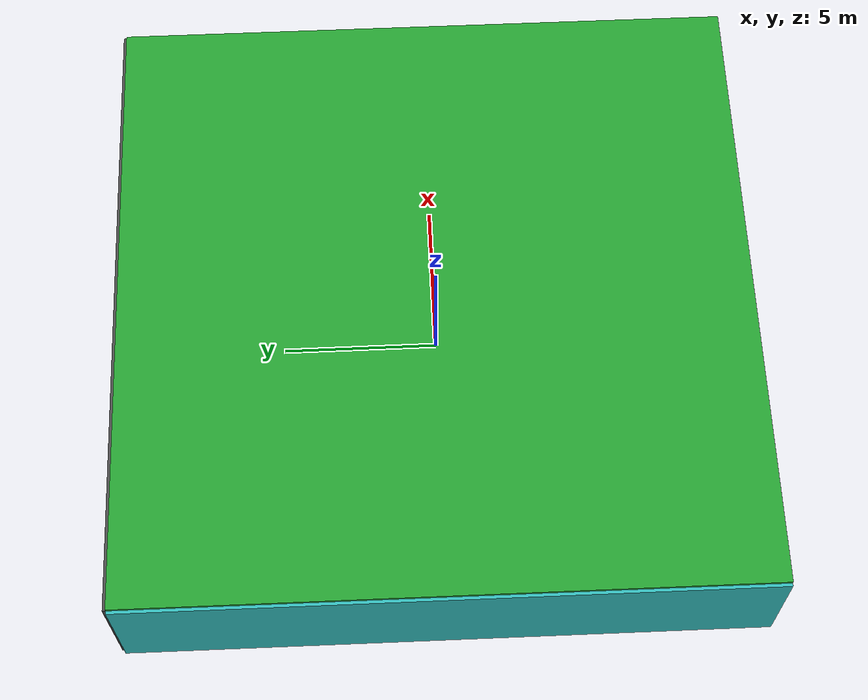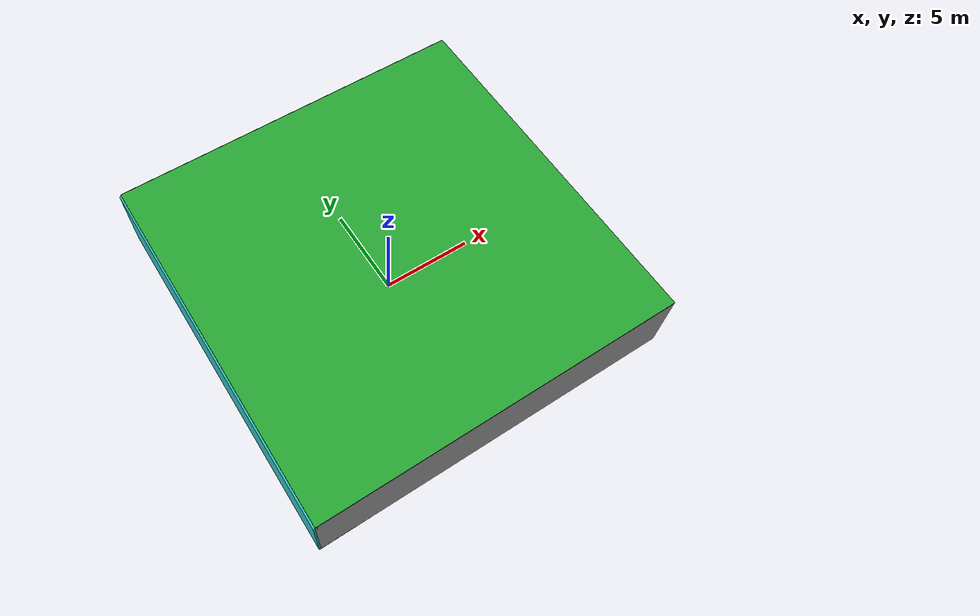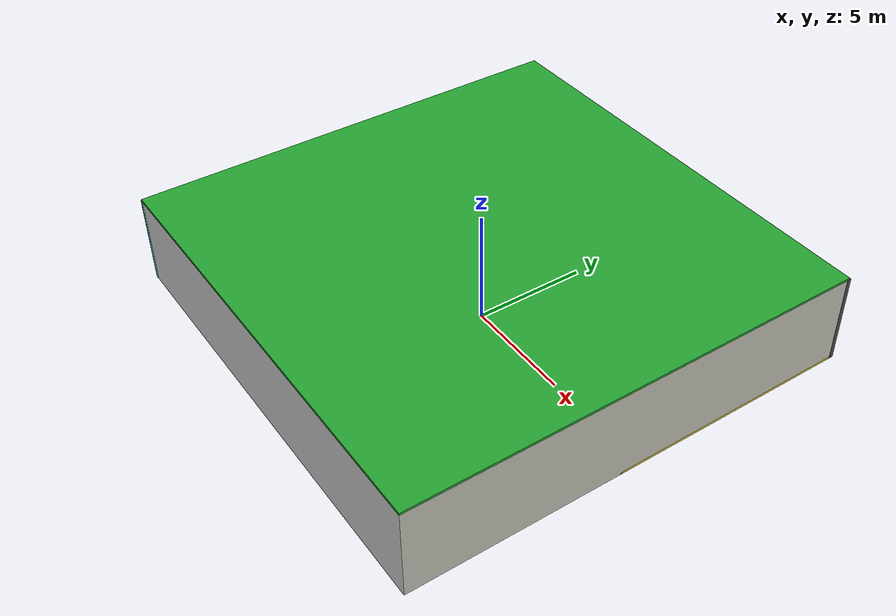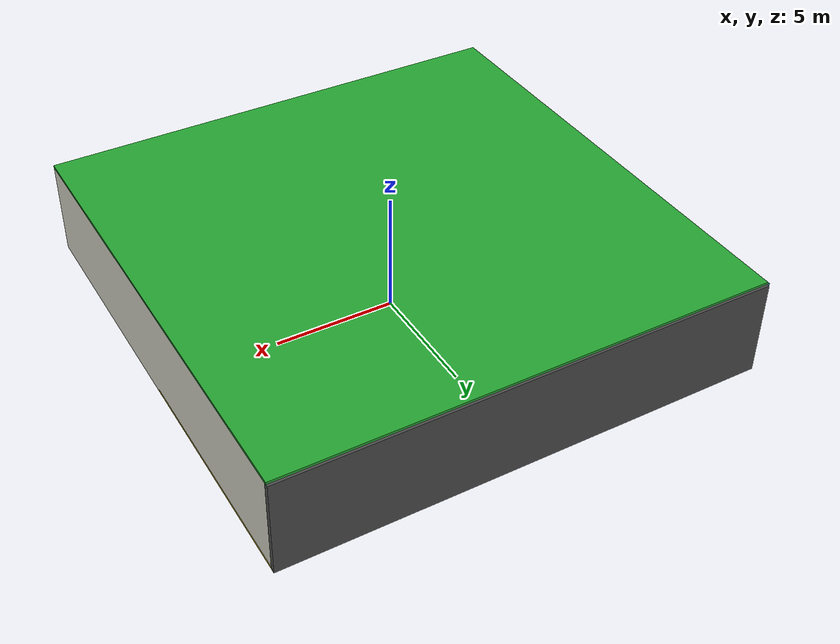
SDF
<sdf version="1.4">
 <world name="default">
  <physics type="ode">
   <max_step_size>0.001</max_step_size>
   <real_time_factor>1</real_time_factor>
   <real_time_update_rate>1000</real_time_update_rate>
   <gravity>0 0 -9.8</gravity>
  </physics>
  <scene><ambient>0.4 0.4 0.4 1</ambient><background>0.7 0.7 0.7 1</background><shadows>1</shadows></scene>
  <model name="Surrounding">
   <static>1</static>
   <link name="Ceiling">
    <collision name="Ceiling_Collision"><geometry><box><size>20 20 0.1</size></box></geometry></collision>
    <visual name="Ceiling_Visual">
     <geometry><box><size>20 20 0.1</size></box></geometry>
     <material>
      <script><uri>file://media/materials/scripts/gazebo.material</uri><name>Gazebo/Green</name></script>
     </material>
    </visual>
    <pose>0 0 4.05 0 0 0</pose>
   </link>
   <link name="Wall_South">
    <collision name="Wall_South_Collision">
     <geometry><box><size>20 0 4</size></box></geometry>
     <pose>0 0 2 0 -0 0</pose>
    </collision>
    <visual name="Wall_South_Visual">
     <pose>0 0 2 0 -0 0</pose>
     <geometry><box><size>20 0 4</size></box></geometry>
     <material>
      <script><uri>file://media/materials/scripts/gazebo.material</uri><name>Gazebo/Pioneer2Body</name></script>
     </material>
    </visual>
    <velocity_decay><linear>0</linear><angular>0</angular></velocity_decay>
    <pose>0 -10 0 0 -0 0</pose>
   </link>
   <link name="Wall_East">
    <collision name="Wall_21_Collision">
     <geometry><box><size>20 0 4</size></box></geometry>
     <pose>0 0 2 0 -0 0</pose>
    </collision>
    <visual name="Wall_21_Visual">
     <pose>0 0 2 0 -0 0</pose>
     <geometry><box><size>20 0 4</size></box></geometry>
     <material>
      <script><uri>file://media/materials/scripts/gazebo.material</uri><name>Gazebo/PaintedWall</name></script>
     </material>
    </visual>
    <velocity_decay><linear>0</linear><angular>0</angular></velocity_decay>
    <pose>10 0 0 0 -0 1.5708</pose>
   </link>
   <link name="Wall_North">
    <collision name="Wall_22_Collision">
     <geometry><box><size>20 0.2 4</size></box></geometry>
     <pose>0 0 2 0 -0 0</pose>
    </collision>
    <visual name="Wall_22_Visual">
     <pose>0 0 2 0 -0 0</pose>
     <geometry><box><size>20 0.2 4</size></box></geometry>
     <material>
      <script><uri>file://media/materials/scripts/gazebo.material</uri><name>Gazebo/DarkGrey</name></script>
     </material>
    </visual>
    <velocity_decay><linear>0</linear><angular>0</angular></velocity_decay>
    <pose>0 10 0 0 -0 0</pose>
   </link>
   <link name="Wall_West">
    <collision name="Wall_23_Collision">
     <geometry><box><size>20 0.2 4</size></box></geometry>
     <pose>0 0 2 0 -0 0</pose>
    </collision>
    <visual name="Wall_23_Visual">
     <pose>0 0 2 0 -0 0</pose>
     <geometry><box><size>20 0.2 4</size></box></geometry>
     <material>
      <script><uri>file://media/materials/scripts/gazebo.material</uri><name>Gazebo/Turquoise</name></script>
     </material>
    </visual>
    <velocity_decay><linear>0</linear><angular>0</angular></velocity_decay>
    <pose>-10 0 0 0 0 -1.5708</pose>
   </link>
   <link name="Ground_link">
    <collision name="collision">
     <pose>0 0 .05 0 -0 0</pose>
     <geometry><box><size>20 20 0.1</size></box></geometry>
    </collision>
    <visual name="visual">
     <pose>0 0 .05 0 -0 0</pose>
     <geometry><box><size>20 20 0.1</size></box></geometry>
     <material>
      <script><uri>file://media/materials/scripts/gazebo.material</uri><name>Gazebo/ZincYellow</name></script>
     </material>
    </visual>
   </link>
   <static>1</static>
  </model>
  <spherical_coordinates>
   <surface_model>EARTH_WGS84</surface_model>
   <latitude_deg>0</latitude_deg>
   <longitude_deg>0</longitude_deg>
   <elevation>0</elevation>
   <heading_deg>0</heading_deg>
  </spherical_coordinates>
  <light name="lightball_0" type="diffuse">
   <diffuse>0.8 0.8 0.8 1</diffuse>
   <specular>0.2 0.2 0.2 1</specular>
   <attenuation>
    <range>100</range>
    <constant>0.7</constant>
    <linear>0.01</linear>
    <quadratic>0.001</quadratic>
   </attenuation>
   <direction>-0.5 0.1 -0.9</direction>
   <pose>1.15764837023 2.76710531413 3.24341091574 0 0 0</pose>
  </light>
  <light name="lightball_1" type="diffuse">
   <diffuse>0.8 0.8 0.8 1</diffuse>
   <specular>0.2 0.2 0.2 1</specular>
   <attenuation>
    <range>100</range>
    <constant>0.7</constant>
    <linear>0.01</linear>
    <quadratic>0.001</quadratic>
   </attenuation>
   <direction>-0.5 0.1 -0.9</direction>
   <pose>0.710180998356 -3.02535349895 2.60080506029 0 0 0</pose>
  </light>
  <light name="lightball_2" type="diffuse">
   <diffuse>0.8 0.8 0.8 1</diffuse>
   <specular>0.2 0.2 0.2 1</specular>
   <attenuation>
    <range>100</range>
    <constant>0.7</constant>
    <linear>0.01</linear>
    <quadratic>0.001</quadratic>
   </attenuation>
   <direction>-0.5 0.1 -0.9</direction>
   <pose>-3.04151967771 -2.9773047537 1.11044615921 0 0 0</pose>
  </light>
  <include><uri>model://table</uri><pose>-6.35712450091 -5.38040950475 0 0 0 0.191368659582</pose></include>
  <include><uri>model://cabinet</uri><pose>-5.53901888323 -3.66571798932 0 0 0 0.407017381079</pose></include>
  <include>
   <uri>model://robocup_3Dsim_goal</uri>
   <pose>-5.45379274035 1.29751920819 0 0 0 0.652609670519</pose>
  </include>
  <include><uri>model://cabinet</uri><pose>-2.68068962657 -4.48172597819 0 0 0 1.97758208207</pose></include>
  <include><uri>model://table</uri><pose>1.04029113269 -1.77628323019 0 0 0 2.54952076299</pose></include>
  <include>
   <uri>model://textured_shapes</uri>
   <pose>2.44148152631 6.70384818854 0 0 0 0.24155051568</pose>
  </include>
  <include><uri>model://cabinet</uri><pose>3.494610703 -2.06910608423 0 0 0 2.77027987128</pose></include>
  <include><uri>model://table</uri><pose>8.59266103032 -8.30882949445 0 0 0 1.62738306878</pose></include>
 </world>
</sdf>

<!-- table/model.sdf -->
<sdf version="1.5">
  <model name="table">
    <static>true</static>
    <link name="link">
      <collision name="surface">
        <pose>0 0 1.0 0 0 0</pose>
        <geometry>
          <box>
            <size>1.5 0.8 0.03</size>
          </box>
        </geometry>
        <surface>
          <friction>
            <ode>
              <mu>0.6</mu>
              <mu2>0.6</mu2>
            </ode>
          </friction>
        </surface>
      </collision>
      <visual name="visual1">
        <pose>0 0 1.0 0 0 0</pose>
        <geometry>
          <box>
            <size>1.5 0.8 0.03</size>
          </box>
        </geometry>
        <material>
          <script>
            <uri>model://media/materials/scripts/gazebo.material</uri>
            <name>Gazebo/Wood</name>
          </script>
        </material>
      </visual>
      <collision name="front_left_leg">
        <pose>0.68 0.38 0.5 0 0 0</pose>
        <geometry>
          <cylinder>
            <radius>0.02</radius>
            <length>1.0</length>
          </cylinder>
        </geometry>
      </collision>
      <visual name="front_left_leg">
        <pose>0.68 0.38 0.5 0 0 0</pose>
        <geometry>
          <cylinder>
            <radius>0.02</radius>
            <length>1.0</length>
          </cylinder>
        </geometry>
        <material>
          <script>
            <uri>model://media/materials/scripts/gazebo.material</uri>
            <name>Gazebo/Grey</name>
          </script>
        </material>
      </visual>
      <collision name="front_right_leg">
        <pose>0.68 -0.38 0.5 0 0 0</pose>
        <geometry>
          <cylinder>
            <radius>0.02</radius>
            <length>1.0</length>
          </cylinder>
        </geometry>
      </collision>
      <visual name="front_right_leg">
        <pose>0.68 -0.38 0.5 0 0 0</pose>
        <geometry>
          <cylinder>
            <radius>0.02</radius>
            <length>1.0</length>
          </cylinder>
        </geometry>
        <material>
          <script>
            <uri>model://media/materials/scripts/gazebo.material</uri>
            <name>Gazebo/Grey</name>
          </script>
        </material>
      </visual>
      <collision name="back_right_leg">
        <pose>-0.68 -0.38 0.5 0 0 0</pose>
        <geometry>
          <cylinder>
            <radius>0.02</radius>
            <length>1.0</length>
          </cylinder>
        </geometry>
      </collision>
      <visual name="back_right_leg">
        <pose>-0.68 -0.38 0.5 0 0 0</pose>
        <geometry>
          <cylinder>
            <radius>0.02</radius>
            <length>1.0</length>
          </cylinder>
        </geometry>
        <material>
          <script>
            <uri>model://media/materials/scripts/gazebo.material</uri>
            <name>Gazebo/Grey</name>
          </script>
        </material>
      </visual>
      <collision name="back_left_leg">
        <pose>-0.68 0.38 0.5 0 0 0</pose>
        <geometry>
          <cylinder>
            <radius>0.02</radius>
            <length>1.0</length>
          </cylinder>
        </geometry>
      </collision>
      <visual name="back_left_leg">
        <pose>-0.68 0.38 0.5 0 0 0</pose>
        <geometry>
          <cylinder>
            <radius>0.02</radius>
            <length>1.0</length>
          </cylinder>
        </geometry>
        <material>
          <script>
            <uri>model://media/materials/scripts/gazebo.material</uri>
            <name>Gazebo/Grey</name>
          </script>
        </material>
      </visual>
    </link>
  </model>
</sdf>

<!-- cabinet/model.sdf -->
<sdf version="1.5">
  <model name="cabinet">
    <static>true</static>
    <link name="cabinet_bottom_plate">
      <inertial>
        <pose>0 0 -1 0 0 0</pose>
        <inertia>
          <ixx>2.050000</ixx>
          <ixy>0</ixy>
          <ixz>0</ixz>
          <iyy>2.050000</iyy>
          <iyz>0</iyz>
          <izz>2.050000</izz>
        </inertia>
        <mass>25.000000</mass>
      </inertial>
      <collision name="cabinet_bottom_plate_geom">
        <pose>0 0 0.010000 0 0 0</pose>
        <geometry>
          <box>
            <size>0.450000 0.450000 0.020000</size>
          </box>
        </geometry>
      </collision>
      <visual name="cabinet_bottom_plate_geom_visual">
        <pose>0 0 0.010000 0 0 0</pose>
        <geometry>
          <box>
            <size>0.450000 0.450000 0.020000</size>
          </box>
        </geometry>
        <material>
          <script>
            <uri>model://media/materials/scripts/gazebo.material</uri>
            <name>Gazebo/Wood</name>
          </script>
        </material>
      </visual>
      <collision name="cabinet_bottom_plate_geom_cabinet_back_plate">
        <pose>0.235000 0 0.510000 0 0 0</pose>
        <geometry>
          <box>
            <size>0.020000 0.450000 1.020000</size>
          </box>
        </geometry>
      </collision>
      <visual name="cabinet_bottom_plate_geom_cabinet_back_plate_visual">
        <pose>0.235000 0 0.510000 0 0 0</pose>
        <geometry>
          <box>
            <size>0.020000 0.450000 1.020000</size>
          </box>
        </geometry>
        <material>
          <script>
            <uri>model://media/materials/scripts/gazebo.material</uri>
            <name>Gazebo/Wood</name>
          </script>
        </material>
      </visual>
      <collision name="cabinet_bottom_plate_geom_cabinet_left_plate">
        <pose>0 0.235000 0.510000 0 0 0</pose>
        <geometry>
          <box>
            <size>0.450000 0.020000 1.020000</size>
          </box>
        </geometry>
      </collision>
      <visual name="cabinet_bottom_plate_geom_cabinet_left_plate_visual">
        <pose>0 0.235000 0.510000 0 0 0</pose>
        <geometry>
          <box>
            <size>0.450000 0.020000 1.020000</size>
          </box>
        </geometry>
        <material>
          <script>
            <uri>model://media/materials/scripts/gazebo.material</uri>
            <name>Gazebo/Wood</name>
          </script>
        </material>
      </visual>
      <collision name="cabinet_bottom_plate_geom_cabinet_middle_plate">
        <pose>0 0 0.510000 0 0 0</pose>
        <geometry>
          <box>
            <size>0.450000 0.450000 0.020000</size>
          </box>
        </geometry>
      </collision>
      <visual name="cabinet_bottom_plate_geom_cabinet_middle_plate_visual">
        <pose>0 0 0.510000 0 0 0</pose>
        <geometry>
          <box>
            <size>0.450000 0.450000 0.020000</size>
          </box>
        </geometry>
        <material>
          <script>
            <uri>model://media/materials/scripts/gazebo.material</uri>
            <name>Gazebo/Wood</name>
          </script>
        </material>
      </visual>
      <collision name="cabinet_bottom_plate_geom_cabinet_right_plate">
        <pose>0 -0.235000 0.510000 0 0 0</pose>
        <geometry>
          <box>
            <size>0.450000 0.020000 1.020000</size>
          </box>
        </geometry>
      </collision>
      <visual name="cabinet_bottom_plate_geom_cabinet_right_plate_visual">
        <pose>0 -0.235000 0.510000 0 0 0</pose>
        <geometry>
          <box>
            <size>0.450000 0.020000 1.020000</size>
          </box>
        </geometry>
        <material>
          <script>
            <uri>model://media/materials/scripts/gazebo.material</uri>
            <name>Gazebo/Wood</name>
          </script>
        </material>
      </visual>
      <collision name="cabinet_bottom_plate_geom_cabinet_top_plate">
        <pose>0 0 1.010000 0 0 0</pose>
        <geometry>
          <box>
            <size>0.450000 0.450000 0.020000</size>
          </box>
        </geometry>
      </collision>
      <visual name="cabinet_bottom_plate_geom_cabinet_top_plate_visual">
        <pose>0 0 1.010000 0 0 0</pose>
        <geometry>
          <box>
            <size>0.450000 0.450000 0.020000</size>
          </box>
        </geometry>
        <material>
          <script>
            <uri>model://media/materials/scripts/gazebo.material</uri>
            <name>Gazebo/Wood</name>
          </script>
        </material>
      </visual>
    </link>
  </model>
</sdf>

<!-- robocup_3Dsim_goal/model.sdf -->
<sdf version="1.5">
  <model name="robocup_3d_goal">
    <static>true</static>
    <link name="left_post">
      <pose>0 1.05 0.45 0 0 0</pose>
      <collision name="collision">
        <geometry>
          <cylinder>
            <radius>0.05</radius>
            <length>0.9</length>
          </cylinder>
        </geometry>
      </collision>
      <visual name="visual">
        <geometry>
          <cylinder>
            <radius>0.05</radius>
            <length>0.9</length>
          </cylinder>
        </geometry>
        <material>
          <script>
            <uri>file://media/materials/scripts/gazebo.material</uri>
            <name>Gazebo/ZincYellow</name>
          </script>
        </material>
      </visual>
    </link>
    <link name="left_support_horiz_lower">
      <pose>0.30 1.05 0.01 0 0 0</pose>
      <collision name="collision">
        <geometry>
          <box>
            <size>0.50 0.02 0.02</size>
          </box>
        </geometry>
      </collision>
      <visual name="visual">
        <geometry>
          <box>
            <size>0.50 0.02 0.02</size>
          </box>
        </geometry>
        <material>
          <script>
            <uri>file://media/materials/scripts/gazebo.material</uri>
            <name>Gazebo/White</name>
          </script>
        </material>
      </visual>
    </link>
    <link name="left_support_horiz_upper">
      <pose>0.30 1.05 0.79 0 0 0</pose>
      <collision name="collision">
        <geometry>
          <box>
            <size>0.50 0.02 0.02</size>
          </box>
        </geometry>
      </collision>
      <visual name="visual">
        <geometry>
          <box>
            <size>0.50 0.02 0.02</size>
          </box>
        </geometry>
        <material>
          <script>
            <uri>file://media/materials/scripts/gazebo.material</uri>
            <name>Gazebo/White</name>
          </script>
        </material>
      </visual>
    </link>
    <link name="left_support_vertical">
      <pose>0.56 1.05 0.4 0 1.5708 0</pose>
      <collision name="collision">
        <geometry>
          <box>
            <size>0.80 0.02 0.02</size>
          </box>
        </geometry>
      </collision>
      <visual name="visual">
        <geometry>
          <box>
            <size>0.80 0.02 0.02</size>
          </box>
        </geometry>
        <material>
          <script>
            <uri>file://media/materials/scripts/gazebo.material</uri>
            <name>Gazebo/White</name>
          </script>
        </material>
      </visual>
    </link>
    <link name="right_support_horiz_lower">
      <pose>0.30 -1.05 0.01 0 0 0</pose>
      <collision name="collision">
        <geometry>
          <box>
            <size>0.50 0.02 0.02</size>
          </box>
        </geometry>
      </collision>
      <visual name="visual">
        <geometry>
          <box>
            <size>0.50 0.02 0.02</size>
          </box>
        </geometry>
        <material>
          <script>
            <uri>file://media/materials/scripts/gazebo.material</uri>
            <name>Gazebo/White</name>
          </script>
        </material>
      </visual>
    </link>
    <link name="right_support_horiz_upper">
      <pose>0.30 -1.05 0.79 0 0 0</pose>
      <collision name="collision">
        <geometry>
          <box>
            <size>0.50 0.02 0.02</size>
          </box>
        </geometry>
      </collision>
      <visual name="visual">
        <geometry>
          <box>
            <size>0.50 0.02 0.02</size>
          </box>
        </geometry>
        <material>
          <script>
            <uri>file://media/materials/scripts/gazebo.material</uri>
            <name>Gazebo/White</name>
          </script>
        </material>
      </visual>
    </link>
    <link name="right_support_vertical">
      <pose>0.56 -1.05 0.4 0 1.5708 0</pose>
      <collision name="collision">
        <geometry>
          <box>
            <size>0.80 0.02 0.02</size>
          </box>
        </geometry>
      </collision>
      <visual name="visual">
        <geometry>
          <box>
            <size>0.80 0.02 0.02</size>
          </box>
        </geometry>
        <material>
          <script>
            <uri>file://media/materials/scripts/gazebo.material</uri>
            <name>Gazebo/White</name>
          </script>
        </material>
      </visual>
    </link>
    <link name="center_support_horiz_lower">
      <pose>0.56 0 0.01 0 1.5708 0</pose>
      <collision name="collision">
        <geometry>
          <box>
            <size>0.02 2.08 0.02</size>
          </box>
        </geometry>
      </collision>
      <visual name="visual">
        <geometry>
          <box>
            <size>0.02 2.08 0.02</size>
          </box>
        </geometry>
        <material>
          <script>
            <uri>file://media/materials/scripts/gazebo.material</uri>
            <name>Gazebo/White</name>
          </script>
        </material>
      </visual>
    </link>
    <link name="center_support_horiz_upper">
      <pose>0.56 0 0.79 0 1.5708 0</pose>
      <collision name="collision">
        <geometry>
          <box>
            <size>0.02 2.08 0.02</size>
          </box>
        </geometry>
      </collision>
      <visual name="visual">
        <geometry>
          <box>
            <size>0.02 2.08 0.02</size>
          </box>
        </geometry>
        <material>
          <script>
            <uri>file://media/materials/scripts/gazebo.material</uri>
            <name>Gazebo/White</name>
          </script>
        </material>
      </visual>
    </link>
    <link name="right_post">
      <pose>0 -1.05 0.45 0 0 0</pose>
      <collision name="collision">
        <geometry>
          <cylinder>
            <radius>0.05</radius>
            <length>0.9</length>
          </cylinder>
        </geometry>
      </collision>
      <visual name="visual">
        <geometry>
          <cylinder>
            <radius>0.05</radius>
            <length>0.9</length>
          </cylinder>
        </geometry>
        <material>
          <script>
            <uri>file://media/materials/scripts/gazebo.material</uri>
            <name>Gazebo/ZincYellow</name>
          </script>
        </material>
      </visual>
    </link>
    <link name="crossbar">
      <pose>0 0 0.85 1.57 1.57 0</pose>
      <collision name="collision">
        <geometry>
          <cylinder>
            <radius>0.05</radius>
            <length>2.0</length>
          </cylinder>
        </geometry>
      </collision>
      <visual name="visual">
        <geometry>
          <cylinder>
            <radius>0.05</radius>
            <length>2.0</length>
          </cylinder>
        </geometry>
        <material>
          <script>
            <uri>file://media/materials/scripts/gazebo.material</uri>
            <name>Gazebo/ZincYellow</name>
          </script>
        </material>
      </visual>
    </link>
    <link name="center_net">
      <pose>0.56 0 0.40 0 0 0</pose>
      <collision name="collision">
        <geometry>
          <box>
            <size>0.01 2.1 0.80</size>
          </box>
        </geometry>
      </collision>
      <visual name="visual">
        <geometry>
          <box>
            <size>0.01 2.1 0.80</size>
          </box>
        </geometry>
        <material>
          <script>
            <uri>model://../model_source/models/robocup09_spl_field/materials/scripts/</uri>
            <uri>model://../model_source/models/robocup09_spl_field/materials/textures/</uri>
            <name>RoboCup/Net</name>
          </script>
        </material>
      </visual>
    </link>
    <link name="left_net">
      <pose>0.30 1.05 0.40 0 0 0</pose>
      <collision name="collision">
        <geometry>
          <box>
            <size>0.50 0.01 0.76</size>
          </box>
        </geometry>
      </collision>
      <visual name="visual">
        <geometry>
          <box>
            <size>0.50 0.01 0.76</size>
          </box>
        </geometry>
        <material>
          <script>
            <uri>model://../model_source/models/robocup09_spl_field/materials/scripts/</uri>
            <uri>model://../model_source/models/robocup09_spl_field/materials/textures/</uri>
            <name>RoboCup/Net</name>
          </script>
        </material>
      </visual>
    </link>
    <link name="right_net">
      <pose>0.30 -1.05 0.40 0 0 0</pose>
      <collision name="collision">
        <geometry>
          <box>
            <size>0.50 0.01 0.76</size>
          </box>
        </geometry>
      </collision>
      <visual name="visual">
        <geometry>
          <box>
            <size>0.50 0.01 0.76</size>
          </box>
        </geometry>
        <material>
          <script>
            <uri>model://../model_source/models/robocup09_spl_field/materials/scripts/</uri>
            <uri>model://../model_source/models/robocup09_spl_field/materials/textures/</uri>
            <name>RoboCup/Net</name>
          </script>
        </material>
      </visual>
    </link>
  </model>
</sdf>

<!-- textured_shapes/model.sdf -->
<sdf version="1.6">
  <model name="textured_shapes">
    <pose>0 0 0.5 0 0 0</pose>
    <link name="box">
      <pose>0 -1.5 0 0 0 0</pose>
      <collision name="collision">
        <geometry>
          <box>
            <size>1 1 1</size>
          </box>
        </geometry>
      </collision>
      <visual name="visual">
        <geometry>
          <box>
            <size>1 1 1</size>
          </box>
        </geometry>
        <material>
          <script>
            <uri>model://../model_source/models/textured_shapes/materials/scripts</uri>
            <uri>model://../model_source/models/textured_shapes/materials/textures</uri>
            <name>TexturedShape/Squares</name>
          </script>
        </material>
      </visual>
    </link>
    <link name="sphere">
      <collision name="collision">
        <geometry>
          <sphere>
            <radius>0.5</radius>
          </sphere>
        </geometry>
      </collision>
      <visual name="visual">
        <geometry>
          <sphere>
            <radius>0.5</radius>
          </sphere>
        </geometry>
        <material>
          <script>
            <uri>model://../model_source/models/textured_shapes/materials/scripts</uri>
            <uri>model://../model_source/models/textured_shapes/materials/textures</uri>
            <name>TexturedShape/Squares</name>
          </script>
        </material>
      </visual>
    </link>
    <link name="cylinder">
      <pose>0 1.5 0 0 0 0</pose>
      <collision name="collision">
        <geometry>
          <cylinder>
            <radius>0.5</radius>
            <length>1</length>
          </cylinder>
        </geometry>
      </collision>
      <visual name="visual">
        <geometry>
          <cylinder>
            <radius>0.5</radius>
            <length>1</length>
          </cylinder>
        </geometry>
        <material>
          <script>
            <uri>model://../model_source/models/textured_shapes/materials/scripts</uri>
            <uri>model://../model_source/models/textured_shapes/materials/textures</uri>
            <name>TexturedShape/Squares</name>
          </script>
        </material>
      </visual>
    </link>
  </model>
</sdf>
